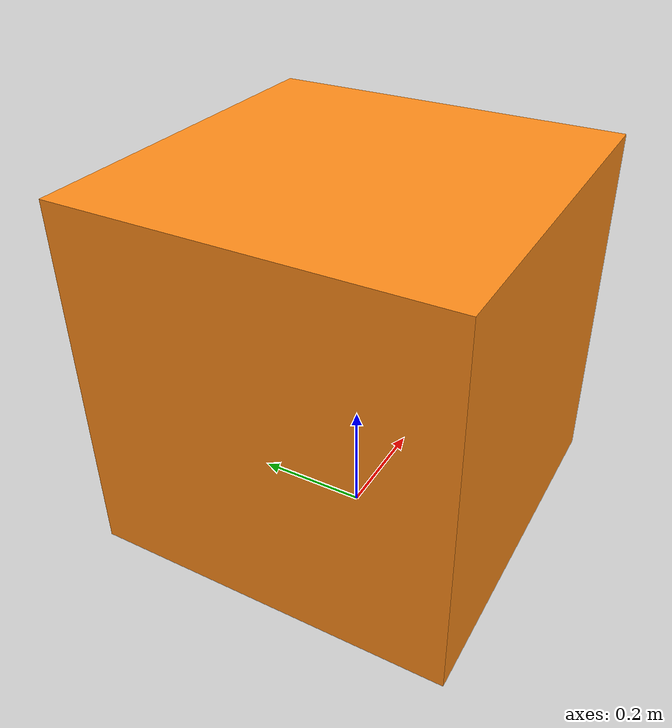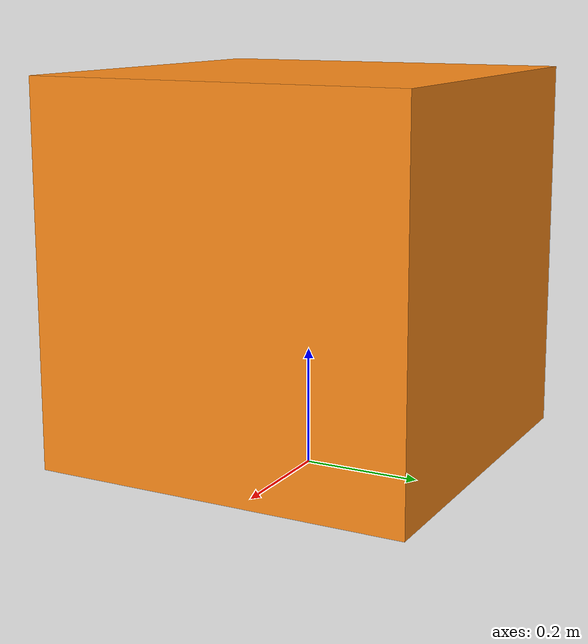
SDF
<?xml version="1.0"?>
<sdf version="1.9">
  <model name="large_box">
    <static>true</static>
    <link name="body">
      <!-- Lift the origin to the box base: pose = half-height up -->
      <pose>0 0 0.350 0 0 0</pose>
      <collision name="collision">
        <geometry>
          <box>
            <size>0.6325 0.6325 0.6325</size>
          </box>
        </geometry>
      </collision>
      <visual name="visual">
        <geometry>
          <box>
            <size>0.6325 0.6325 0.6325</size>
          </box>
        </geometry>
        <material>
          <diffuse>1.0 0.55 0.1 1.0</diffuse>
          <ambient>0.8 0.42 0.08 1.0</ambient>
        </material>
      </visual>
    </link>
  </model>
</sdf>
